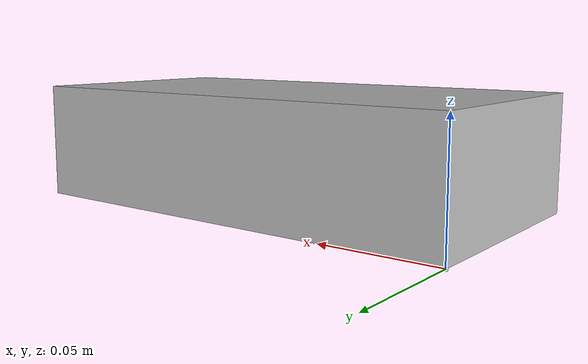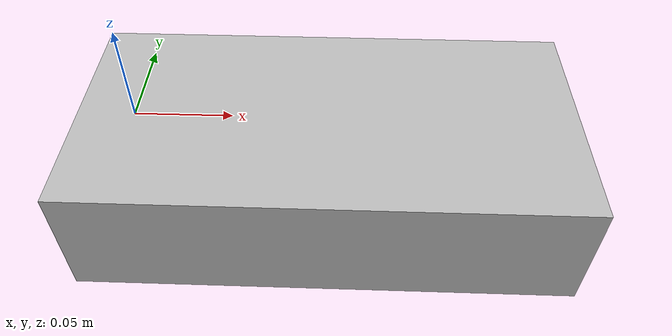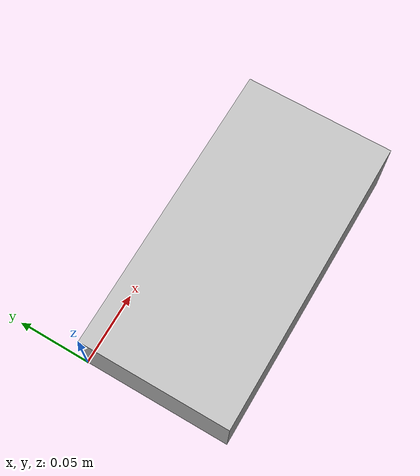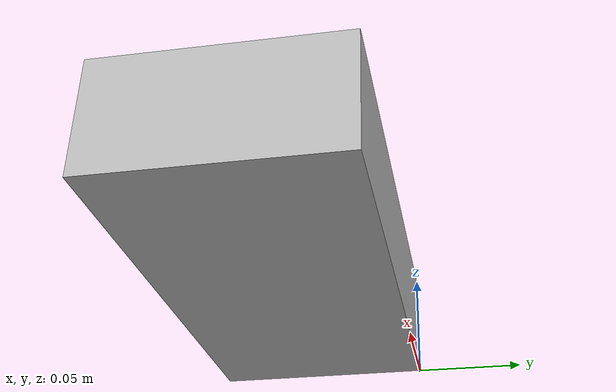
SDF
<?xml version="1.0"?>
<sdf version="1.6">
  <model name="medkit">
    <pose>0 0 0 0 0 0</pose>
    <static>true</static>
    <link name="link">

      <!-- Visualización del modelo -->
      <visual name="visual">
        <geometry>
          <mesh>
            <uri>model://medkit/meshes/medkit.dae</uri>
            <scale>1 1 1</scale>
          </mesh>
        </geometry>
      </visual>

      <!-- Colisión usando el mismo modelo DAE -->

    </link>
  </model>
</sdf>
